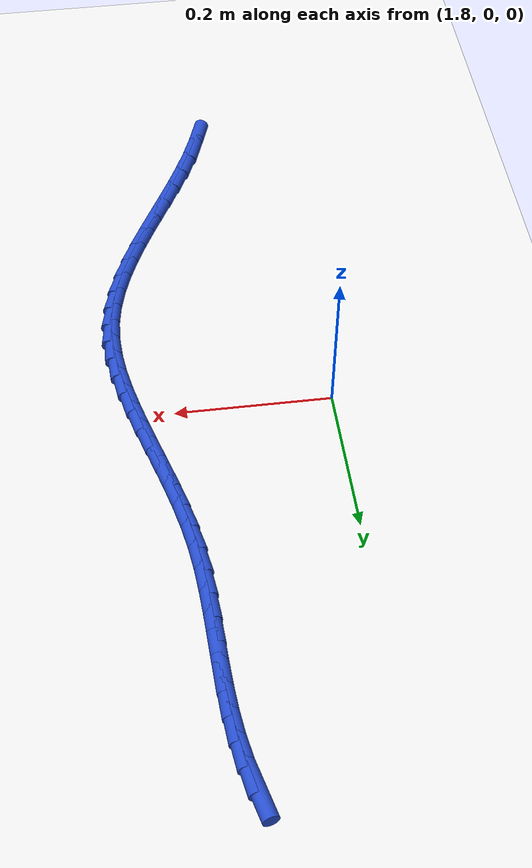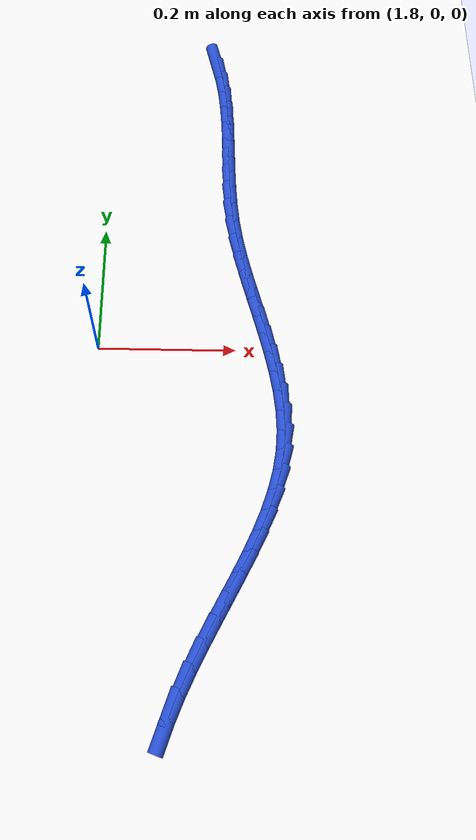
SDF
<sdf version="1.6">
 <world name="default">
  <model name="ground_plane">
   <static>1</static>
   <link name="link">
    <collision name="collision">
     <geometry><plane><normal>0 0 1</normal><size>100 100</size></plane></geometry>
     <surface><friction><ode><mu>100</mu><mu2>50</mu2></ode></friction></surface>
    </collision>
    <visual name="visual">
     <cast_shadows>0</cast_shadows>
     <geometry><plane><normal>0 0 1</normal><size>100 100</size></plane></geometry>
     <material>
      <script><uri>file://media/materials/scripts/gazebo.material</uri><name>Gazebo/WhiteGlow</name></script>
     </material>
    </visual>
   </link>
  </model>
  <model name="line">
   <link name="link_88">
    <pose>1.9705019249645817 0.526026731783118 0.01 0 1.57 -1.335675847460159</pose>
    <collision name="collision">
     <geometry><cylinder><radius>0.01</radius><length>0.08</length></cylinder></geometry>
    </collision>
    <visual name="visual">
     <material>
      <script><name>Gazebo/Blue</name><uri>file://media/materials/scripts/gazebo.material</uri></script>
     </material>
     <geometry><cylinder><radius>0.01</radius><length>0.08</length></cylinder></geometry>
    </visual>
   </link>
   <link name="link_89">
    <pose>1.9777310873708296 0.4958487755298158 0.01 0 1.57 -1.407115791777056</pose>
    <collision name="collision">
     <geometry><cylinder><radius>0.01</radius><length>0.08</length></cylinder></geometry>
    </collision>
    <visual name="visual">
     <material>
      <script><name>Gazebo/Blue</name><uri>file://media/materials/scripts/gazebo.material</uri></script>
     </material>
     <geometry><cylinder><radius>0.01</radius><length>0.08</length></cylinder></geometry>
    </visual>
   </link>
   <link name="link_90">
    <pose>1.9827720284657326 0.46532686487619696 0.01 0 1.57 -1.4643820053376226</pose>
    <collision name="collision">
     <geometry><cylinder><radius>0.01</radius><length>0.08</length></cylinder></geometry>
    </collision>
    <visual name="visual">
     <material>
      <script><name>Gazebo/Blue</name><uri>file://media/materials/scripts/gazebo.material</uri></script>
     </material>
     <geometry><cylinder><radius>0.01</radius><length>0.08</length></cylinder></geometry>
    </visual>
   </link>
   <link name="link_91">
    <pose>1.9860645213876413 0.43450342482947374 0.01 0 1.57 -1.5070585994974652</pose>
    <collision name="collision">
     <geometry><cylinder><radius>0.01</radius><length>0.08</length></cylinder></geometry>
    </collision>
    <visual name="visual">
     <material>
      <script><name>Gazebo/Blue</name><uri>file://media/materials/scripts/gazebo.material</uri></script>
     </material>
     <geometry><cylinder><radius>0.01</radius><length>0.08</length></cylinder></geometry>
    </visual>
   </link>
   <link name="link_92">
    <pose>1.988048339274905 0.4034208803968582 0.01 0 1.57 -1.5351901790132993</pose>
    <collision name="collision">
     <geometry><cylinder><radius>0.01</radius><length>0.08</length></cylinder></geometry>
    </collision>
    <visual name="visual">
     <material>
      <script><name>Gazebo/Blue</name><uri>file://media/materials/scripts/gazebo.material</uri></script>
     </material>
     <geometry><cylinder><radius>0.01</radius><length>0.08</length></cylinder></geometry>
    </visual>
   </link>
   <link name="link_93">
    <pose>1.989163255265872 0.37212165658556334 0.01 0 1.57 -1.5490104050726161</pose>
    <collision name="collision">
     <geometry><cylinder><radius>0.01</radius><length>0.08</length></cylinder></geometry>
    </collision>
    <visual name="visual">
     <material>
      <script><name>Gazebo/Blue</name><uri>file://media/materials/scripts/gazebo.material</uri></script>
     </material>
     <geometry><cylinder><radius>0.01</radius><length>0.08</length></cylinder></geometry>
    </visual>
   </link>
   <link name="link_94">
    <pose>1.9898490424988946 0.3406481784028014 0.01 0 1.57 -1.5487646181335177</pose>
    <collision name="collision">
     <geometry><cylinder><radius>0.01</radius><length>0.08</length></cylinder></geometry>
    </collision>
    <visual name="visual">
     <material>
      <script><name>Gazebo/Blue</name><uri>file://media/materials/scripts/gazebo.material</uri></script>
     </material>
     <geometry><cylinder><radius>0.01</radius><length>0.08</length></cylinder></geometry>
    </visual>
   </link>
   <link name="link_95">
    <pose>1.99054547411232 0.3090428708557839 0.01 0 1.57 -1.534627864196822</pose>
    <collision name="collision">
     <geometry><cylinder><radius>0.01</radius><length>0.08</length></cylinder></geometry>
    </collision>
    <visual name="visual">
     <material>
      <script><name>Gazebo/Blue</name><uri>file://media/materials/scripts/gazebo.material</uri></script>
     </material>
     <geometry><cylinder><radius>0.01</radius><length>0.08</length></cylinder></geometry>
    </visual>
   </link>
   <link name="link_96">
    <pose>1.9916923232444996 0.2773481589517243 0.01 0 1.57 -1.5067086841990303</pose>
    <collision name="collision">
     <geometry><cylinder><radius>0.01</radius><length>0.08</length></cylinder></geometry>
    </collision>
    <visual name="visual">
     <material>
      <script><name>Gazebo/Blue</name><uri>file://media/materials/scripts/gazebo.material</uri></script>
     </material>
     <geometry><cylinder><radius>0.01</radius><length>0.08</length></cylinder></geometry>
    </visual>
   </link>
   <link name="link_97">
    <pose>1.9937293630337816 0.24560646769783454 0.01 0 1.57 -1.4651314444157175</pose>
    <collision name="collision">
     <geometry><cylinder><radius>0.01</radius><length>0.08</length></cylinder></geometry>
    </collision>
    <visual name="visual">
     <material>
      <script><name>Gazebo/Blue</name><uri>file://media/materials/scripts/gazebo.material</uri></script>
     </material>
     <geometry><cylinder><radius>0.01</radius><length>0.08</length></cylinder></geometry>
    </visual>
   </link>
   <link name="link_98">
    <pose>1.9970963666185169 0.21386022210132635 0.01 0 1.57 -1.411816448238104</pose>
    <collision name="collision">
     <geometry><cylinder><radius>0.01</radius><length>0.08</length></cylinder></geometry>
    </collision>
    <visual name="visual">
     <material>
      <script><name>Gazebo/Blue</name><uri>file://media/materials/scripts/gazebo.material</uri></script>
     </material>
     <geometry><cylinder><radius>0.01</radius><length>0.08</length></cylinder></geometry>
    </visual>
   </link>
   <link name="link_99">
    <pose>2.002180391626226 0.18215104939166274 0.01 0 1.57 -1.3632565244389878</pose>
    <collision name="collision">
     <geometry><cylinder><radius>0.01</radius><length>0.08</length></cylinder></geometry>
    </collision>
    <visual name="visual">
     <material>
      <script><name>Gazebo/Blue</name><uri>file://media/materials/scripts/gazebo.material</uri></script>
     </material>
     <geometry><cylinder><radius>0.01</radius><length>0.08</length></cylinder></geometry>
    </visual>
   </link>
   <link name="link_100">
    <pose>2.0088425539459287 0.15051261738350824 0.01 0 1.57 -1.3283675213449964</pose>
    <collision name="collision">
     <geometry><cylinder><radius>0.01</radius><length>0.08</length></cylinder></geometry>
    </collision>
    <visual name="visual">
     <material>
      <script><name>Gazebo/Blue</name><uri>file://media/materials/scripts/gazebo.material</uri></script>
     </material>
     <geometry><cylinder><radius>0.01</radius><length>0.08</length></cylinder></geometry>
    </visual>
   </link>
   <link name="link_101">
    <pose>2.016641812137867 0.11897402115021839 0.01 0 1.57 -1.3067555460158198</pose>
    <collision name="collision">
     <geometry><cylinder><radius>0.01</radius><length>0.08</length></cylinder></geometry>
    </collision>
    <visual name="visual">
     <material>
      <script><name>Gazebo/Blue</name><uri>file://media/materials/scripts/gazebo.material</uri></script>
     </material>
     <geometry><cylinder><radius>0.01</radius><length>0.08</length></cylinder></geometry>
    </visual>
   </link>
   <link name="link_102">
    <pose>2.025133522817333 0.08756430125459887 0.01 0 1.57 -1.298113600705032</pose>
    <collision name="collision">
     <geometry><cylinder><radius>0.01</radius><length>0.08</length></cylinder></geometry>
    </collision>
    <visual name="visual">
     <material>
      <script><name>Gazebo/Blue</name><uri>file://media/materials/scripts/gazebo.material</uri></script>
     </material>
     <geometry><cylinder><radius>0.01</radius><length>0.08</length></cylinder></geometry>
    </visual>
   </link>
   <link name="link_103">
    <pose>2.0338730425996223 0.05631249825945436 0.01 0 1.57 -1.3024345158557167</pose>
    <collision name="collision">
     <geometry><cylinder><radius>0.01</radius><length>0.08</length></cylinder></geometry>
    </collision>
    <visual name="visual">
     <material>
      <script><name>Gazebo/Blue</name><uri>file://media/materials/scripts/gazebo.material</uri></script>
     </material>
     <geometry><cylinder><radius>0.01</radius><length>0.08</length></cylinder></geometry>
    </visual>
   </link>
   <link name="link_104">
    <pose>2.042415728100027 0.02524765272758992 0.01 0 1.57 -1.3200598947105835</pose>
    <collision name="collision">
     <geometry><cylinder><radius>0.01</radius><length>0.08</length></cylinder></geometry>
    </collision>
    <visual name="visual">
     <material>
      <script><name>Gazebo/Blue</name><uri>file://media/materials/scripts/gazebo.material</uri></script>
     </material>
     <geometry><cylinder><radius>0.01</radius><length>0.08</length></cylinder></geometry>
    </visual>
   </link>
   <link name="link_105">
    <pose>2.0503169359338416 -0.005601194778189499 0.01 0 1.57 -1.3516840085215462</pose>
    <collision name="collision">
     <geometry><cylinder><radius>0.01</radius><length>0.08</length></cylinder></geometry>
    </collision>
    <visual name="visual">
     <material>
      <script><name>Gazebo/Blue</name><uri>file://media/materials/scripts/gazebo.material</uri></script>
     </material>
     <geometry><cylinder><radius>0.01</radius><length>0.08</length></cylinder></geometry>
    </visual>
   </link>
   <link name="link_106">
    <pose>2.0571320227163583 -0.03620500369507955 0.01 0 1.57 -1.3982987244093392</pose>
    <collision name="collision">
     <geometry><cylinder><radius>0.01</radius><length>0.08</length></cylinder></geometry>
    </collision>
    <visual name="visual">
     <material>
      <script><name>Gazebo/Blue</name><uri>file://media/materials/scripts/gazebo.material</uri></script>
     </material>
     <geometry><cylinder><radius>0.01</radius><length>0.08</length></cylinder></geometry>
    </visual>
   </link>
   <link name="link_107">
    <pose>2.0624163450628714 -0.0665347334602738 0.01 0 1.57 -1.4610397844308627</pose>
    <collision name="collision">
     <geometry><cylinder><radius>0.01</radius><length>0.08</length></cylinder></geometry>
    </collision>
    <visual name="visual">
     <material>
      <script><name>Gazebo/Blue</name><uri>file://media/materials/scripts/gazebo.material</uri></script>
     </material>
     <geometry><cylinder><radius>0.01</radius><length>0.08</length></cylinder></geometry>
    </visual>
   </link>
   <link name="link_108">
    <pose>2.065725259588675 -0.09656134351096796 0.01 0 1.57 -1.5408716105940017</pose>
    <collision name="collision">
     <geometry><cylinder><radius>0.01</radius><length>0.08</length></cylinder></geometry>
    </collision>
    <visual name="visual">
     <material>
      <script><name>Gazebo/Blue</name><uri>file://media/materials/scripts/gazebo.material</uri></script>
     </material>
     <geometry><cylinder><radius>0.01</radius><length>0.08</length></cylinder></geometry>
    </visual>
   </link>
   <link name="link_109">
    <pose>2.0666141229090615 -0.12625579328435704 0.01 0 1.57 1.5035805176974115</pose>
    <collision name="collision">
     <geometry><cylinder><radius>0.01</radius><length>0.08</length></cylinder></geometry>
    </collision>
    <visual name="visual">
     <material>
      <script><name>Gazebo/Blue</name><uri>file://media/materials/scripts/gazebo.material</uri></script>
     </material>
     <geometry><cylinder><radius>0.01</radius><length>0.08</length></cylinder></geometry>
    </visual>
   </link>
   <link name="link_110">
    <pose>2.0646394801676204 -0.1555891909315 0.01 0 1.57 1.398622600005185</pose>
    <collision name="collision">
     <geometry><cylinder><radius>0.01</radius><length>0.08</length></cylinder></geometry>
    </collision>
    <visual name="visual">
     <material>
      <script><name>Gazebo/Blue</name><uri>file://media/materials/scripts/gazebo.material</uri></script>
     </material>
     <geometry><cylinder><radius>0.01</radius><length>0.08</length></cylinder></geometry>
    </visual>
   </link>
   <link name="link_111">
    <pose>2.0596010543860084 -0.18456307208426756 0.01 0 1.57 1.3064444803254587</pose>
    <collision name="collision">
     <geometry><cylinder><radius>0.01</radius><length>0.08</length></cylinder></geometry>
    </collision>
    <visual name="visual">
     <material>
      <script><name>Gazebo/Blue</name><uri>file://media/materials/scripts/gazebo.material</uri></script>
     </material>
     <geometry><cylinder><radius>0.01</radius><length>0.08</length></cylinder></geometry>
    </visual>
   </link>
   <link name="link_112">
    <pose>2.051836876047378 -0.21324632776098953 0.01 0 1.57 1.2305268115369385</pose>
    <collision name="collision">
     <geometry><cylinder><radius>0.01</radius><length>0.08</length></cylinder></geometry>
    </collision>
    <visual name="visual">
     <material>
      <script><name>Gazebo/Blue</name><uri>file://media/materials/scripts/gazebo.material</uri></script>
     </material>
     <geometry><cylinder><radius>0.01</radius><length>0.08</length></cylinder></geometry>
    </visual>
   </link>
   <link name="link_113">
    <pose>2.041757157322084 -0.24171688066872987 0.01 0 1.57 1.1706504016050914</pose>
    <collision name="collision">
     <geometry><cylinder><radius>0.01</radius><length>0.08</length></cylinder></geometry>
    </collision>
    <visual name="visual">
     <material>
      <script><name>Gazebo/Blue</name><uri>file://media/materials/scripts/gazebo.material</uri></script>
     </material>
     <geometry><cylinder><radius>0.01</radius><length>0.08</length></cylinder></geometry>
    </visual>
   </link>
   <link name="link_114">
    <pose>2.029772110380477 -0.27005265351455454 0.01 0 1.57 1.1259732683561428</pose>
    <collision name="collision">
     <geometry><cylinder><radius>0.01</radius><length>0.08</length></cylinder></geometry>
    </collision>
    <visual name="visual">
     <material>
      <script><name>Gazebo/Blue</name><uri>file://media/materials/scripts/gazebo.material</uri></script>
     </material>
     <geometry><cylinder><radius>0.01</radius><length>0.08</length></cylinder></geometry>
    </visual>
   </link>
   <link name="link_115">
    <pose>2.0162919473929124 -0.29833156900552904 0.01 0 1.57 1.0954840666529948</pose>
    <collision name="collision">
     <geometry><cylinder><radius>0.01</radius><length>0.08</length></cylinder></geometry>
    </collision>
    <visual name="visual">
     <material>
      <script><name>Gazebo/Blue</name><uri>file://media/materials/scripts/gazebo.material</uri></script>
     </material>
     <geometry><cylinder><radius>0.01</radius><length>0.08</length></cylinder></geometry>
    </visual>
   </link>
   <link name="link_116">
    <pose>2.001726880529743 -0.3266315498487185 0.01 0 1.57 1.0782753619965721</pose>
    <collision name="collision">
     <geometry><cylinder><radius>0.01</radius><length>0.08</length></cylinder></geometry>
    </collision>
    <visual name="visual">
     <material>
      <script><name>Gazebo/Blue</name><uri>file://media/materials/scripts/gazebo.material</uri></script>
     </material>
     <geometry><cylinder><radius>0.01</radius><length>0.08</length></cylinder></geometry>
    </visual>
   </link>
   <link name="link_117">
    <pose>1.986487121961321 -0.35503051875118824 0.01 0 1.57 1.073680204916332</pose>
    <collision name="collision">
     <geometry><cylinder><radius>0.01</radius><length>0.08</length></cylinder></geometry>
    </collision>
    <visual name="visual">
     <material>
      <script><name>Gazebo/Blue</name><uri>file://media/materials/scripts/gazebo.material</uri></script>
     </material>
     <geometry><cylinder><radius>0.01</radius><length>0.08</length></cylinder></geometry>
    </visual>
   </link>
   <link name="link_118">
    <pose>1.970982883858 -0.38360639842000366 0.01 0 1.57 1.0813218192379979</pose>
    <collision name="collision">
     <geometry><cylinder><radius>0.01</radius><length>0.08</length></cylinder></geometry>
    </collision>
    <visual name="visual">
     <material>
      <script><name>Gazebo/Blue</name><uri>file://media/materials/scripts/gazebo.material</uri></script>
     </material>
     <geometry><cylinder><radius>0.01</radius><length>0.08</length></cylinder></geometry>
    </visual>
   </link>
   <link name="link_119">
    <pose>1.9556243783901333 -0.4124371115622307 0.01 0 1.57 1.1011094773205419</pose>
    <collision name="collision">
     <geometry><cylinder><radius>0.01</radius><length>0.08</length></cylinder></geometry>
    </collision>
    <visual name="visual">
     <material>
      <script><name>Gazebo/Blue</name><uri>file://media/materials/scripts/gazebo.material</uri></script>
     </material>
     <geometry><cylinder><radius>0.01</radius><length>0.08</length></cylinder></geometry>
    </visual>
   </link>
   <link name="link_120">
    <pose>1.9408218177280747 -0.4416005808849335 0.01 0 1.57 1.1331940517532462</pose>
    <collision name="collision">
     <geometry><cylinder><radius>0.01</radius><length>0.08</length></cylinder></geometry>
    </collision>
    <visual name="visual">
     <material>
      <script><name>Gazebo/Blue</name><uri>file://media/materials/scripts/gazebo.material</uri></script>
     </material>
     <geometry><cylinder><radius>0.01</radius><length>0.08</length></cylinder></geometry>
    </visual>
   </link>
   <link name="link_121">
    <pose>1.9269854140421763 -0.47117472909517794 0.01 0 1.57 1.1778690087453942</pose>
    <collision name="collision">
     <geometry><cylinder><radius>0.01</radius><length>0.08</length></cylinder></geometry>
    </collision>
    <visual name="visual">
     <material>
      <script><name>Gazebo/Blue</name><uri>file://media/materials/scripts/gazebo.material</uri></script>
     </material>
     <geometry><cylinder><radius>0.01</radius><length>0.08</length></cylinder></geometry>
    </visual>
   </link>
   <link name="link_122">
    <pose>1.9145250341448536 -0.5012373384863553 0.01 0 1.57 1.2270240633169736</pose>
    <collision name="collision">
     <geometry><cylinder><radius>0.01</radius><length>0.08</length></cylinder></geometry>
    </collision>
    <visual name="visual">
     <material>
      <script><name>Gazebo/Blue</name><uri>file://media/materials/scripts/gazebo.material</uri></script>
     </material>
     <geometry><cylinder><radius>0.01</radius><length>0.08</length></cylinder></geometry>
    </visual>
   </link>
  </model>
 </world>
</sdf>
